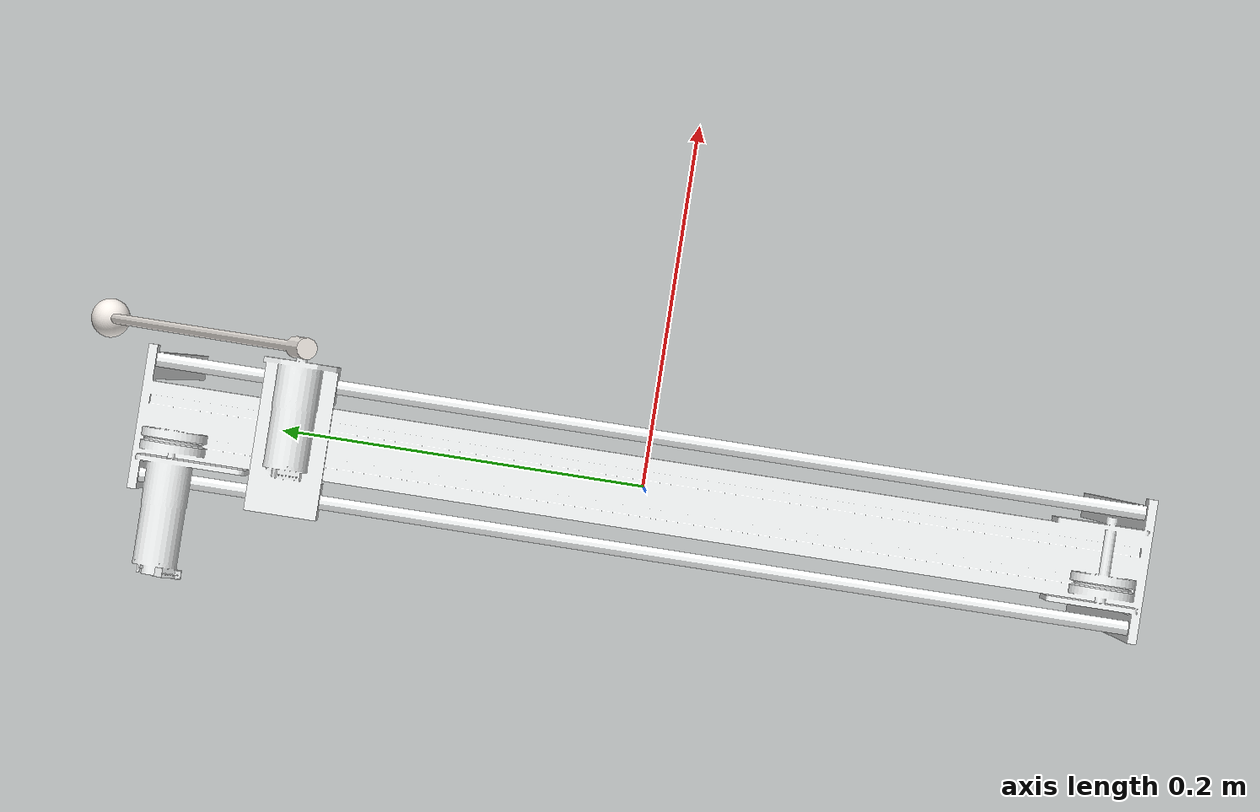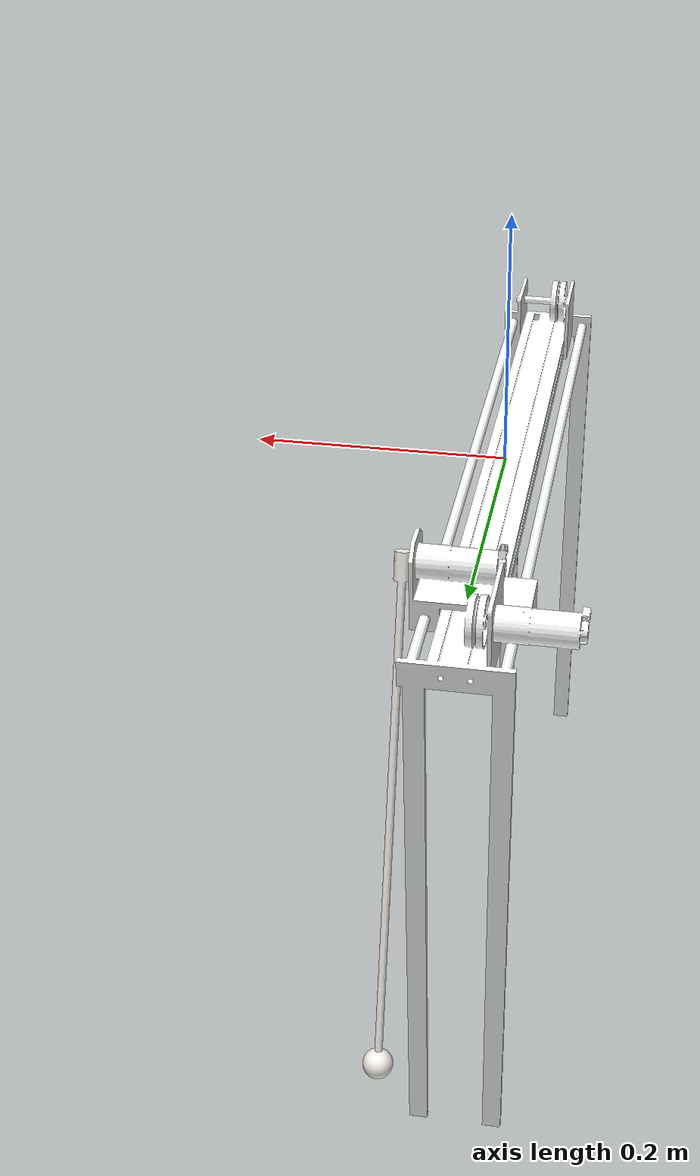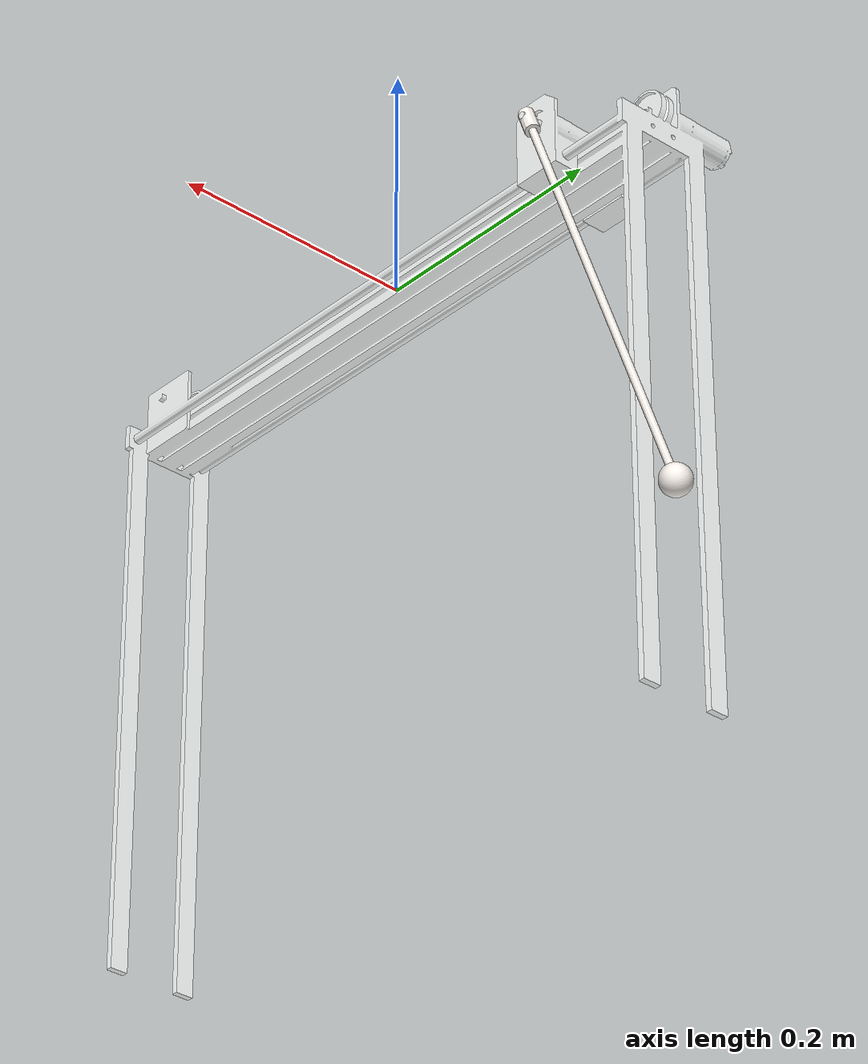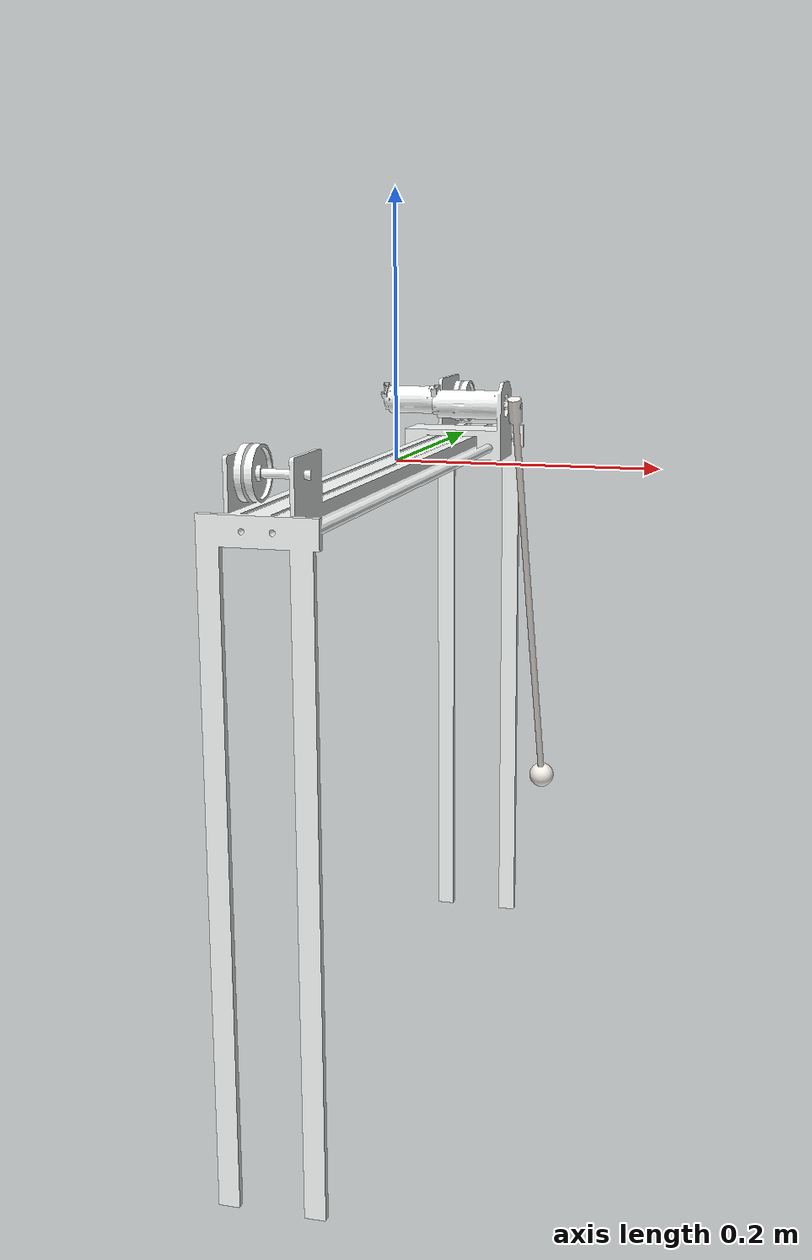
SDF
<sdf version='1.11'>
  <model name='final'>
    <link name='base_link'>
      <inertial>
        <pose>-0.0080628999999999996 0.011439 -0.071869000000000002 0 0 0</pose>
        <mass>0.48171000000000003</mass>
        <inertia>
          <ixx>0.0096804000000000005</ixx>
          <ixy>-2.5984e-09</ixy>
          <ixz>-6.4002000000000001e-06</ixz>
          <iyy>0.0031976000000000001</iyy>
          <iyz>6.1207000000000002e-09</iyz>
          <izz>0.0067780999999999996</izz>
        </inertia>
      </inertial>
      <collision name='base_link_collision'>
        <pose>0 0 0 0 0 0</pose>
        <geometry>
          <mesh>
            <scale>1 1 1</scale>
            <uri>file:///home/nava/ros2_ws/src/modelo_robot/meshes/base_link.STL</uri>
          </mesh>
        </geometry>
      </collision>
      <visual name='base_link_visual'>
        <pose>0 0 0 0 0 0</pose>
        <geometry>
          <mesh>
            <scale>1 1 1</scale>
            <uri>file:///home/nava/ros2_ws/src/modelo_robot/meshes/base_link.STL</uri>
          </mesh>
        </geometry>
        <material>
          <diffuse>0.990199983 1 1 1</diffuse>
          <ambient>0.990199983 1 1 1</ambient>
        </material>
      </visual>
    </link>
    <joint name="world_base_fixed_joint" type="fixed">
     <parent>world</parent>
     <child>base_link</child>
    </joint>
    <joint name='movil_joint' type='prismatic'>
      <pose relative_to='base_link'>-0.0048478000000000002 0.19467000000000001 0.0050000000000000001 1.5708 5.5511151231257827e-17 -1.5708</pose>
      <parent>base_link</parent>
      <child>movil_Link</child>
      <axis>
        <xyz>1 0 0</xyz>
        <limit>
          <lower>0</lower>
          <upper>0.40000000000000002</upper>
          <effort>10</effort>
          <velocity>1</velocity>
        </limit>
        <dynamics>
          <damping>0</damping>
          <friction>0.10000000000000001</friction>
          <spring_reference>0</spring_reference>
          <spring_stiffness>0</spring_stiffness>
        </dynamics>
      </axis>
    </joint>
    <link name='movil_Link'>
      <pose relative_to='movil_joint'>0 0 0 0 0 0</pose>
      <inertial>
        <pose>1.3509000000000001e-06 0.0018795999999999999 -0.0076871999999999999 0 0 0</pose>
        <mass>0.077463000000000004</mass>
        <inertia>
          <ixx>6.1041000000000001e-05</ixx>
          <ixy>-3.9804e-09</ixy>
          <ixz>9.7659999999999992e-10</ixz>
          <iyy>6.1556999999999994e-05</iyy>
          <iyz>3.8411999999999997e-06</iyz>
          <izz>1.4866e-05</izz>
        </inertia>
      </inertial>
      <collision name='movil_Link_collision'>
        <pose>0 0 0 0 0 0</pose>
        <geometry>
          <mesh>
            <scale>1 1 1</scale>
            <uri>file:///home/nava/ros2_ws/src/modelo_robot/meshes/movil_Link.STL</uri>
          </mesh>
        </geometry>
      </collision>
      <visual name='movil_Link_visual'>
        <pose>0 0 0 0 0 0</pose>
        <geometry>
          <mesh>
            <scale>1 1 1</scale>
            <uri>file:///home/nava/ros2_ws/src/modelo_robot/meshes/movil_Link.STL</uri>
          </mesh>
        </geometry>
        <material>
          <diffuse>0.990199983 1 1 1</diffuse>
          <ambient>0.990199983 1 1 1</ambient>
        </material>
      </visual>
    </link>
    <joint name='pendulo_joint' type='revolute'>
      <pose relative_to='movil_Link'>0 0.02 -0.057500000000000002 3.1415853071795872 -2.1175823681357508e-22 -0.34603000000000012</pose>
      <parent>movil_Link</parent>
      <child>pendulo_Link</child>
      <axis>
        <xyz>0 0 1</xyz>
        <limit>
          <lower>-inf</lower>
          <upper>inf</upper>
        </limit>
        <dynamics>
          <damping>0</damping>
          <friction>0.10000000000000001</friction>
          <spring_reference>0</spring_reference>
          <spring_stiffness>0</spring_stiffness>
        </dynamics>
      </axis>
    </joint>
    <link name='pendulo_Link'>
      <pose relative_to='pendulo_joint'>0 0 0 0 0 0</pose>
      <inertial>
        <pose>-2.1734323583720339e-09 0.2469089641755112 -0.0059999993675756034 0 0 0</pose>
        <mass>0.15321699999999999</mass>
        <inertia>
          <ixx>0.0032910906522226318</ixx>
          <ixy>-6.3621934208751126e-11</ixy>
          <ixz>1.1422994112266621e-11</ixz>
          <iyy>3.5733799999884061e-06</iyy>
          <iyz>2.8177828123652869e-10</iyz>
          <izz>0.0032911906522226312</izz>
        </inertia>
      </inertial>
      <collision name='pendulo_Link_collision'>
        <pose>0 0 0 0 0 0</pose>
        <geometry>
          <mesh>
            <scale>1 1 1</scale>
            <uri>file:///home/nava/ros2_ws/src/modelo_robot/meshes/pendulo_Link.STL</uri>
          </mesh>
        </geometry>
      </collision>
      <collision name='pendulo_Link_fixed_joint_lump__masa_Link_collision_1'>
        <pose>0 0.3967 -0.0060000000000000001 3.1415853071795872 0 -3.1415853071795872</pose>
        <geometry>
          <mesh>
            <scale>1 1 1</scale>
            <uri>file:///home/nava/ros2_ws/src/modelo_robot/meshes/masa_Link.STL</uri>
          </mesh>
        </geometry>
      </collision>
      <visual name='pendulo_Link_visual'>
        <pose>0 0 0 0 0 0</pose>
        <geometry>
          <mesh>
            <scale>1 1 1</scale>
            <uri>file:///home/nava/ros2_ws/src/modelo_robot/meshes/pendulo_Link.STL</uri>
          </mesh>
        </geometry>
        <material>
          <diffuse>0.970587492 0.946075022 0.921562433 1</diffuse>
          <ambient>0.970587492 0.946075022 0.921562433 1</ambient>
        </material>
      </visual>
      <visual name='pendulo_Link_fixed_joint_lump__masa_Link_visual_1'>
        <pose>0 0.3967 -0.0060000000000000001 3.1415853071795872 0 -3.1415853071795872</pose>
        <geometry>
          <mesh>
            <scale>1 1 1</scale>
            <uri>file:///home/nava/ros2_ws/src/modelo_robot/meshes/masa_Link.STL</uri>
          </mesh>
        </geometry>
        <material>
          <diffuse>0.970587492 0.946075022 0.921562433 1</diffuse>
          <ambient>0.970587492 0.946075022 0.921562433 1</ambient>
        </material>
      </visual>
    </link>
    <frame name='masa_joint' attached_to='pendulo_Link'>
      <pose>0 0.3967 -0.0060000000000000001 3.1415853071795872 0 -3.1415853071795872</pose>
    </frame>
    <frame name='masa_Link' attached_to='masa_joint'>
      <pose>0 0 0 0 0 0</pose>
    </frame>
   <plugin name="gz::sim::systems::JointPositionController" filename="gz-sim-joint-position-controller-system">
    <joint_name>movil_joint</joint_name>
    <topic>movil_cmd</topic>
    <p_gain>100.0</p_gain>
    <i_gain>0.1</i_gain>
    <d_gain>0.01</d_gain>
    <i_max>1.0</i_max>
    <i_min>-1.0</i_min>
    <cmd_max>1000.0</cmd_max>
    <cmd_min>-1000.0</cmd_min>
   </plugin>
   <plugin name="gz::sim::systems::JointPositionController" filename="gz-sim-joint-position-controller-system">
      <joint_name>pendulo_joint</joint_name> <!-- Cambia este nombre por el de tu joint de revolución -->
      <topic>pendulo</topic>
      <p_gain>10.0</p_gain>
      <i_gain>0.1</i_gain>
      <d_gain>0.01</d_gain>
      <i_max>1.0</i_max>
      <i_min>-1.0</i_min>
      <cmd_max>10.0</cmd_max>
      <cmd_min>-10.0</cmd_min>
   </plugin>
   <plugin
      filename="gz-sim-joint-state-publisher-system"
      name="gz::sim::systems::JointStatePublisher">
      <topic>joint_states</topic>
      <joint_name>movil_joint</joint_name>
   </plugin>
      <plugin
      filename="gz-sim-joint-state-publisher-system"
      name="gz::sim::systems::JointStatePublisher">
      <topic>joint_states</topic>
      <joint_name>pendulo_joint</joint_name>
   </plugin>
  </model>
</sdf>
